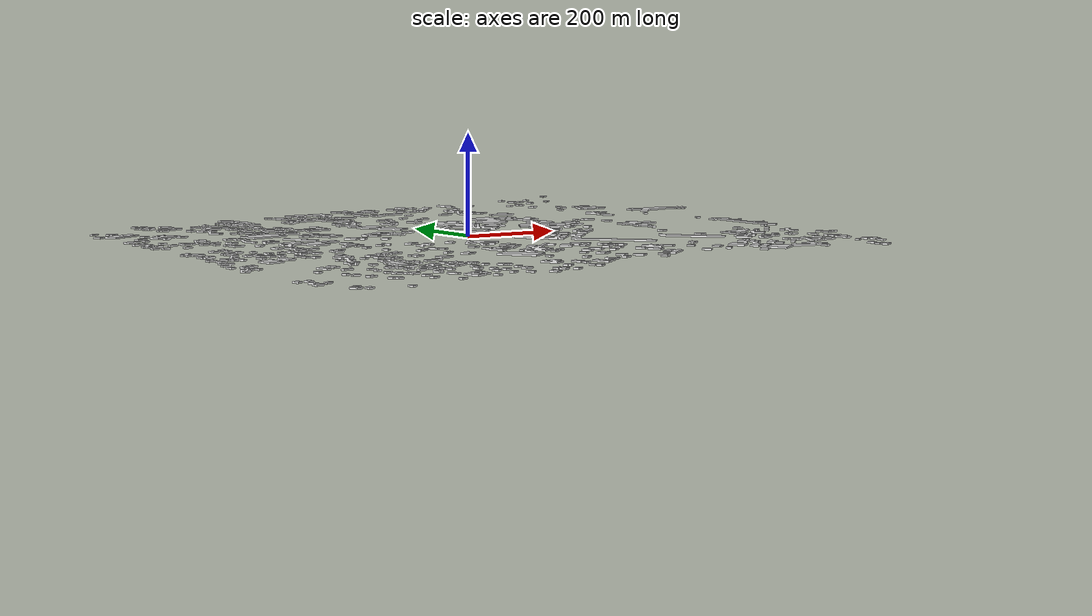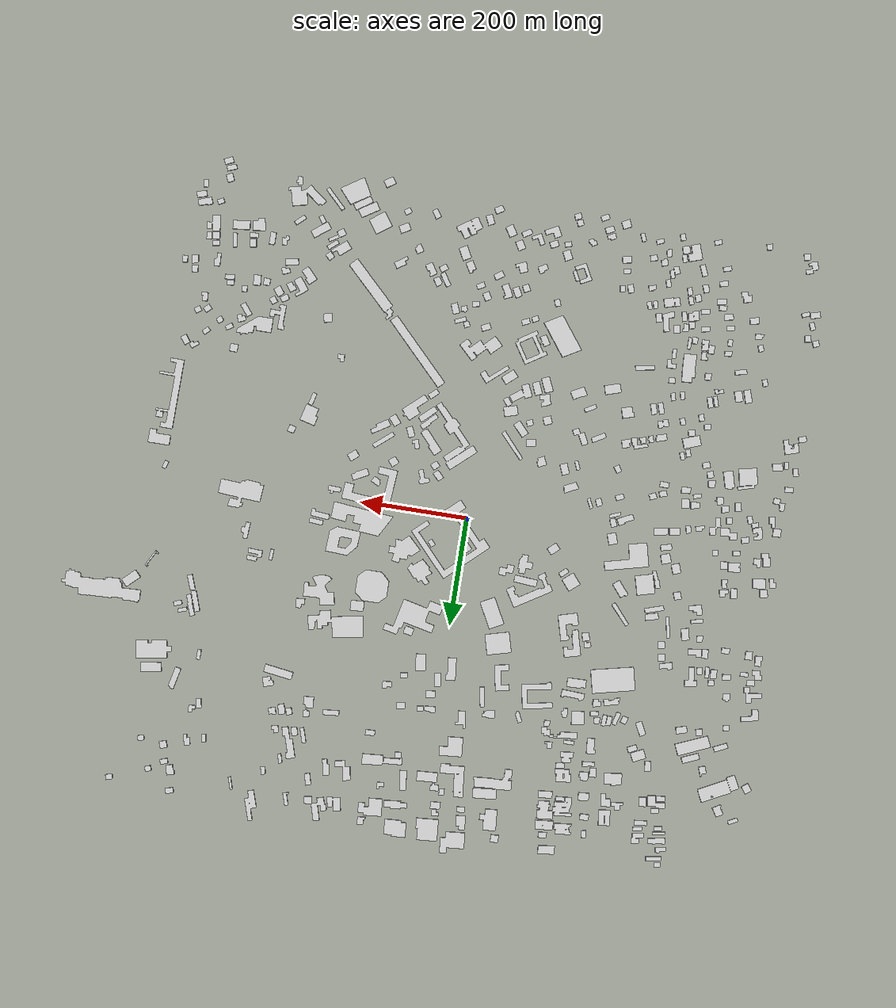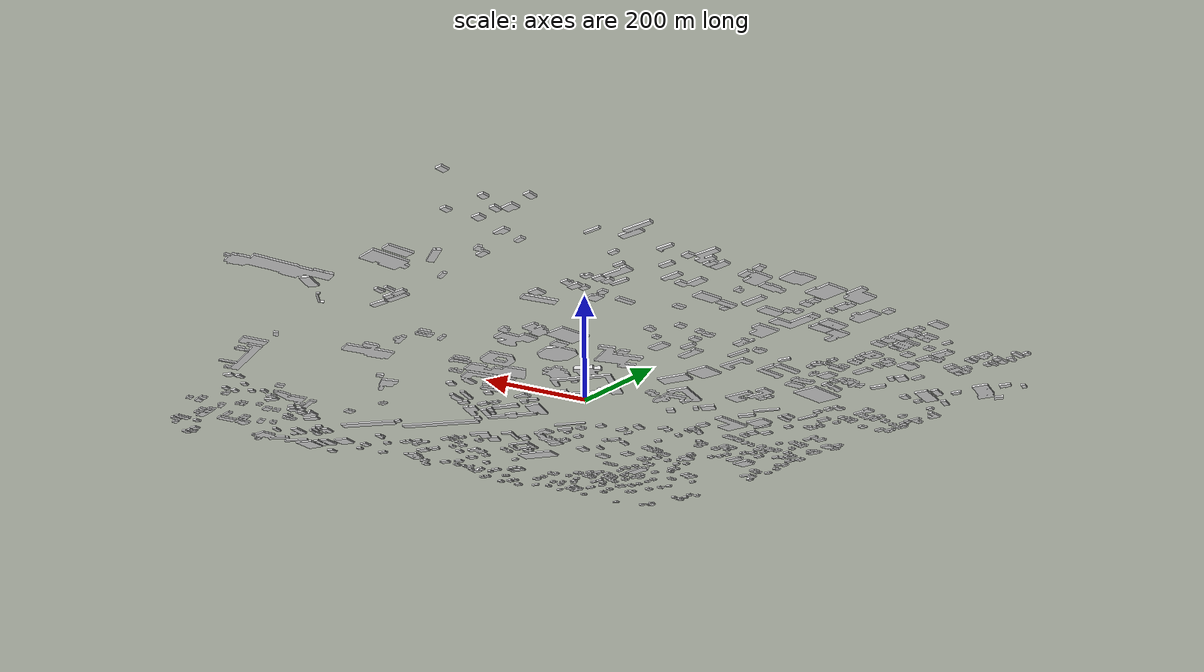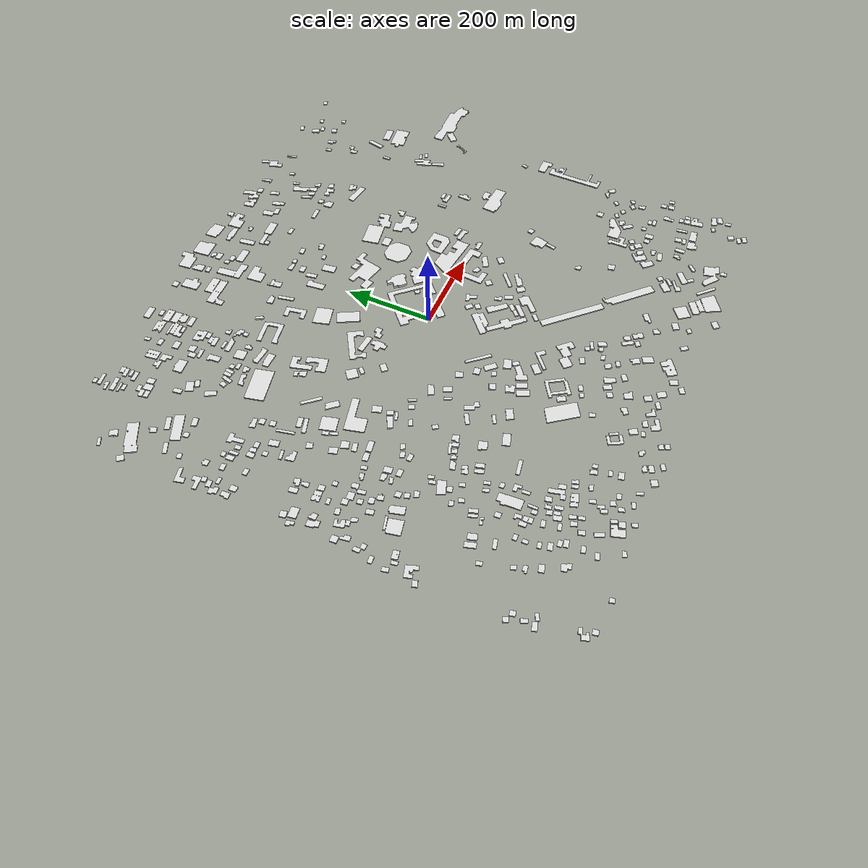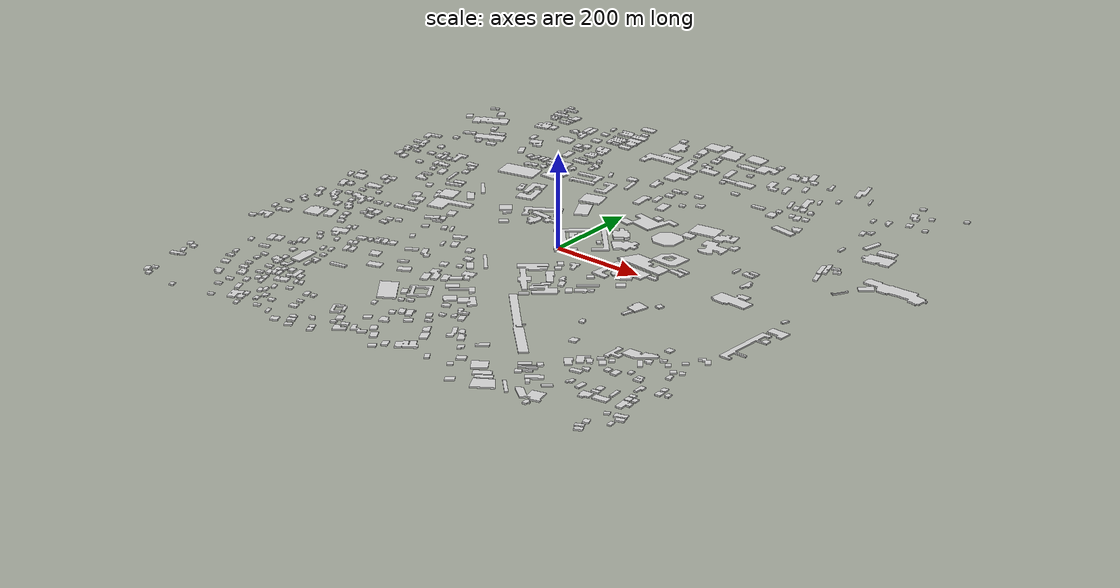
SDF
<?xml version="1.0" ?>
<sdf version="1.6">
  <model name="college_buildings">
    <static>true</static>
    <link name="link">
      <visual name="visual">
        <geometry>
          <mesh>
            <uri>model://college_buildings/meshes/buildings.dae</uri>
            <scale>1 1 1</scale>
          </mesh>
        </geometry>
        <material>
          <ambient>0.75 0.75 0.75 1</ambient>
          <diffuse>0.85 0.85 0.85 1</diffuse>
          <specular>0.05 0.05 0.05 1</specular>
          <emissive>0 0 0 1</emissive>
        </material>
      </visual>
      <collision name="collision">
        <geometry>
          <mesh>
            <uri>model://college_buildings/meshes/buildings.dae</uri>
            <scale>1 1 1</scale>
          </mesh>
        </geometry>
      </collision>
    </link>
  </model>
</sdf>
